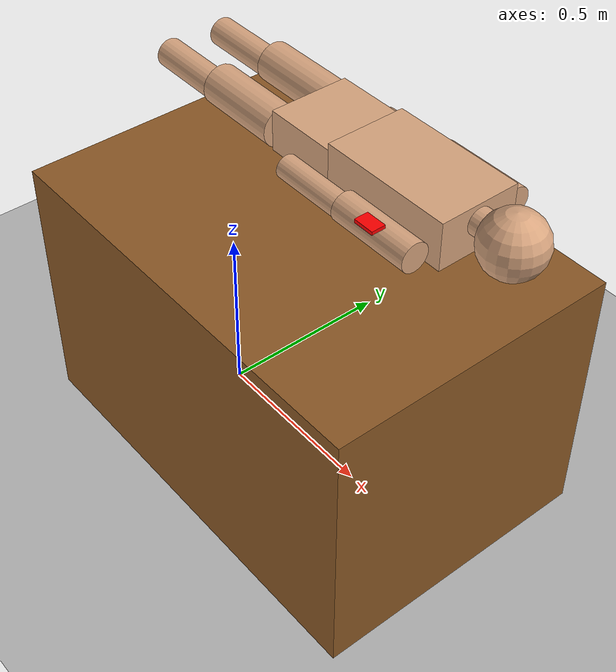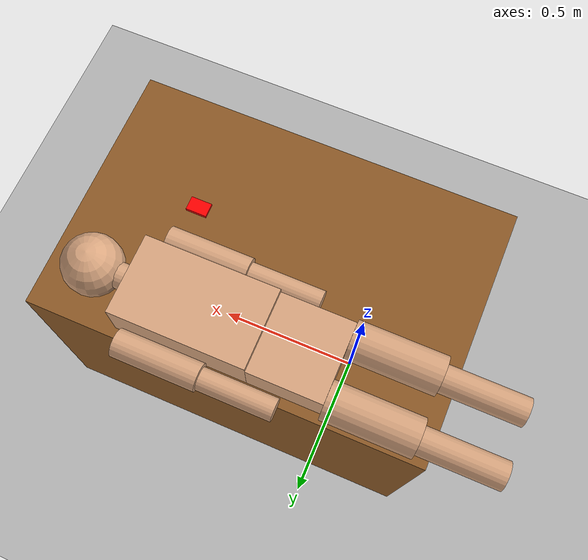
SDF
<?xml version="1.0"?>
<sdf version="1.10">
  <world name="wound_tracking_mannequin_world">

    <!-- ── Simulation plugins ─────────────────────────────────────────────── -->
    <plugin filename="gz-sim-physics-system"
            name="gz::sim::systems::Physics"/>
    <plugin filename="gz-sim-user-commands-system"
            name="gz::sim::systems::UserCommands"/>
    <plugin filename="gz-sim-scene-broadcaster-system"
            name="gz::sim::systems::SceneBroadcaster"/>
    <plugin filename="gz-sim-contact-system"
            name="gz::sim::systems::Contact"/>
    <plugin filename="gz-sim-sensors-system"
            name="gz::sim::systems::Sensors">
      <render_engine>ogre2</render_engine>
    </plugin>

    <!-- ── Lighting ───────────────────────────────────────────────────────── -->
    <light type="directional" name="sun">
      <cast_shadows>true</cast_shadows>
      <pose>0 0 10 0 0 0</pose>
      <diffuse>0.9 0.9 0.9 1</diffuse>
      <specular>0.3 0.3 0.3 1</specular>
      <direction>-0.5 0.1 -0.9</direction>
    </light>

    <!-- ── Ground plane ───────────────────────────────────────────────────── -->
    <model name="ground_plane">
      <static>true</static>
      <link name="link">
        <collision name="collision">
          <geometry>
            <plane><normal>0 0 1</normal><size>20 20</size></plane>
          </geometry>
        </collision>
        <visual name="visual">
          <geometry>
            <plane><normal>0 0 1</normal><size>20 20</size></plane>
          </geometry>
          <material>
            <ambient>0.7 0.7 0.7 1</ambient>
            <diffuse>0.7 0.7 0.7 1</diffuse>
          </material>
        </visual>
      </link>
    </model>

    <!-- ── Table ──────────────────────────────────────────────────────────── -->
    <!--
      1.2 × 0.8 × 0.75 m.  Centre at z = 0.375 → top surface at z = 0.75.
      Extends X: [−0.3, 0.9]  Y: [−0.4, 0.4]
    -->
    <model name="table">
      <static>true</static>
      <pose>0.3 0 0.375 0 0 0</pose>
      <link name="link">
        <collision name="collision">
          <geometry><box><size>1.2 0.8 0.75</size></box></geometry>
        </collision>
        <visual name="visual">
          <geometry><box><size>1.2 0.8 0.75</size></box></geometry>
          <material>
            <ambient>0.55 0.35 0.15 1</ambient>
            <diffuse>0.55 0.35 0.15 1</diffuse>
            <specular>0.05 0.05 0.05 1</specular>
          </material>
        </visual>
      </link>
    </model>

    <!-- ▼▼▼  BODY POSITION — change this one line to move the whole mannequin  ▼▼▼ -->
    <model name="mannequin">
      <static>true</static>
      <pose>0.43 0.25 0.75 0 0 0</pose>
    <!-- ▲▲▲  END BODY POSITION  ▲▲▲ -->

      <!-- Skin material reused across all body-part visuals -->
      <!-- ambient/diffuse: warm beige skin tone (0.85, 0.65, 0.50) -->

      <link name="torso">
        <pose>0 0 0.07 0 0 0</pose>
        <collision name="collision">
          <geometry><box><size>0.40 0.24 0.14</size></box></geometry>
        </collision>
        <visual name="visual">
          <geometry><box><size>0.40 0.24 0.14</size></box></geometry>
          <material>
            <ambient>0.85 0.65 0.50 1</ambient>
            <diffuse>0.85 0.65 0.50 1</diffuse>
            <specular>0.05 0.03 0.02 1</specular>
          </material>
        </visual>
      </link>

      <link name="head">
        <pose>0.31 0 0.09 0 0 0</pose>
        <collision name="collision">
          <geometry><sphere><radius>0.09</radius></sphere></geometry>
        </collision>
        <visual name="visual">
          <geometry><sphere><radius>0.09</radius></sphere></geometry>
          <material>
            <ambient>0.85 0.65 0.50 1</ambient>
            <diffuse>0.85 0.65 0.50 1</diffuse>
            <specular>0.05 0.03 0.02 1</specular>
          </material>
        </visual>
      </link>

      <link name="neck">
        <pose>0.215 0 0.09 0 1.5708 0</pose>
        <collision name="collision">
          <geometry><cylinder><radius>0.038</radius><length>0.07</length></cylinder></geometry>
        </collision>
        <visual name="visual">
          <geometry><cylinder><radius>0.038</radius><length>0.07</length></cylinder></geometry>
          <material>
            <ambient>0.85 0.65 0.50 1</ambient>
            <diffuse>0.85 0.65 0.50 1</diffuse>
            <specular>0.05 0.03 0.02 1</specular>
          </material>
        </visual>
      </link>

      <link name="left_upper_arm">
        <pose>0.04 -0.165 0.042 0 1.5708 0</pose>
        <collision name="collision">
          <geometry><cylinder><radius>0.042</radius><length>0.25</length></cylinder></geometry>
        </collision>
        <visual name="visual">
          <geometry><cylinder><radius>0.042</radius><length>0.25</length></cylinder></geometry>
          <material>
            <ambient>0.85 0.65 0.50 1</ambient>
            <diffuse>0.85 0.65 0.50 1</diffuse>
            <specular>0.05 0.03 0.02 1</specular>
          </material>
        </visual>
      </link>

      <!-- ── Right upper arm ───────────────────────────────────────────────
           Mirror of left upper arm at y = +0.165
      ────────────────────────────────────────────────────────────────── -->
      <link name="right_upper_arm">
        <pose>0.04 0.165 0.042 0 1.5708 0</pose>
        <collision name="collision">
          <geometry><cylinder><radius>0.042</radius><length>0.25</length></cylinder></geometry>
        </collision>
        <visual name="visual">
          <geometry><cylinder><radius>0.042</radius><length>0.25</length></cylinder></geometry>
          <material>
            <ambient>0.85 0.65 0.50 1</ambient>
            <diffuse>0.85 0.65 0.50 1</diffuse>
            <specular>0.05 0.03 0.02 1</specular>
          </material>
        </visual>
      </link>

      <link name="left_forearm">
        <pose>-0.195 -0.165 0.034 0 1.5708 0</pose>
        <collision name="collision">
          <geometry><cylinder><radius>0.034</radius><length>0.22</length></cylinder></geometry>
        </collision>
        <visual name="visual">
          <geometry><cylinder><radius>0.034</radius><length>0.22</length></cylinder></geometry>
          <material>
            <ambient>0.85 0.65 0.50 1</ambient>
            <diffuse>0.85 0.65 0.50 1</diffuse>
            <specular>0.05 0.03 0.02 1</specular>
          </material>
        </visual>
      </link>

      <!-- ── Right forearm ─────────────────────────────────────────────────
           Mirror of left forearm at y = +0.165
      ────────────────────────────────────────────────────────────────── -->
      <link name="right_forearm">
        <pose>-0.195 0.165 0.034 0 1.5708 0</pose>
        <collision name="collision">
          <geometry><cylinder><radius>0.034</radius><length>0.22</length></cylinder></geometry>
        </collision>
        <visual name="visual">
          <geometry><cylinder><radius>0.034</radius><length>0.22</length></cylinder></geometry>
          <material>
            <ambient>0.85 0.65 0.50 1</ambient>
            <diffuse>0.85 0.65 0.50 1</diffuse>
            <specular>0.05 0.03 0.02 1</specular>
          </material>
        </visual>
      </link>

      <link name="pelvis">
        <pose>-0.31 0 0.06 0 0 0</pose>
        <collision name="collision">
          <geometry><box><size>0.22 0.24 0.12</size></box></geometry>
        </collision>
        <visual name="visual">
          <geometry><box><size>0.22 0.24 0.12</size></box></geometry>
          <material>
            <ambient>0.85 0.65 0.50 1</ambient>
            <diffuse>0.85 0.65 0.50 1</diffuse>
            <specular>0.05 0.03 0.02 1</specular>
          </material>
        </visual>
      </link>

      <link name="left_thigh">
        <pose>-0.55 -0.09 0.058 0 1.5708 0</pose>
        <collision name="collision">
          <geometry><cylinder><radius>0.058</radius><length>0.26</length></cylinder></geometry>
        </collision>
        <visual name="visual">
          <geometry><cylinder><radius>0.058</radius><length>0.26</length></cylinder></geometry>
          <material>
            <ambient>0.85 0.65 0.50 1</ambient>
            <diffuse>0.85 0.65 0.50 1</diffuse>
            <specular>0.05 0.03 0.02 1</specular>
          </material>
        </visual>
      </link>

      <!-- ── Right thigh ───────────────────────────────────────────────────
           Mirror of left thigh at y = +0.09
      ────────────────────────────────────────────────────────────────── -->
      <link name="right_thigh">
        <pose>-0.55 0.09 0.058 0 1.5708 0</pose>
        <collision name="collision">
          <geometry><cylinder><radius>0.058</radius><length>0.26</length></cylinder></geometry>
        </collision>
        <visual name="visual">
          <geometry><cylinder><radius>0.058</radius><length>0.26</length></cylinder></geometry>
          <material>
            <ambient>0.85 0.65 0.50 1</ambient>
            <diffuse>0.85 0.65 0.50 1</diffuse>
            <specular>0.05 0.03 0.02 1</specular>
          </material>
        </visual>
      </link>

      <link name="left_shin">
        <pose>-0.80 -0.09 0.042 0 1.5708 0</pose>
        <collision name="collision">
          <geometry><cylinder><radius>0.042</radius><length>0.24</length></cylinder></geometry>
        </collision>
        <visual name="visual">
          <geometry><cylinder><radius>0.042</radius><length>0.24</length></cylinder></geometry>
          <material>
            <ambient>0.85 0.65 0.50 1</ambient>
            <diffuse>0.85 0.65 0.50 1</diffuse>
            <specular>0.05 0.03 0.02 1</specular>
          </material>
        </visual>
      </link>

      <!-- ── Right shin ────────────────────────────────────────────────────
           Mirror of left shin at y = +0.09
      ────────────────────────────────────────────────────────────────── -->
      <link name="right_shin">
        <pose>-0.80 0.09 0.042 0 1.5708 0</pose>
        <collision name="collision">
          <geometry><cylinder><radius>0.042</radius><length>0.24</length></cylinder></geometry>
        </collision>
        <visual name="visual">
          <geometry><cylinder><radius>0.042</radius><length>0.24</length></cylinder></geometry>
          <material>
            <ambient>0.85 0.65 0.50 1</ambient>
            <diffuse>0.85 0.65 0.50 1</diffuse>
            <specular>0.05 0.03 0.02 1</specular>
          </material>
        </visual>
      </link>

    </model>
    <!-- ════════════════════════════════════════════════════════════════════
         END MANNEQUIN
         ════════════════════════════════════════════════════════════════════ -->

    <!-- ▼▼▼  WOUND POSITION — change this one line to reposition the wound  ▼▼▼ -->
    <model name="wound_patch">
      <static>true</static>
      <pose>0.53 0.0 0.895 0 0 0</pose>
    <!-- ▲▲▲  END WOUND POSITION  ▲▲▲ -->

      <link name="link">
        <collision name="collision">
          <geometry><box><size>0.06 0.04 0.01</size></box></geometry>
        </collision>
        <visual name="visual">
          <geometry><box><size>0.06 0.04 0.01</size></box></geometry>
          <material>
            <ambient>1.0 0.0 0.0 1</ambient>
            <diffuse>1.0 0.0 0.0 1</diffuse>
            <specular>0.1 0.0 0.0 1</specular>
          </material>
        </visual>
      </link>
    </model>
    <!-- ════════════════════════════════════════════════════════════════════
         END WOUND PATCH
         ════════════════════════════════════════════════════════════════════ -->

  </world>
</sdf>
